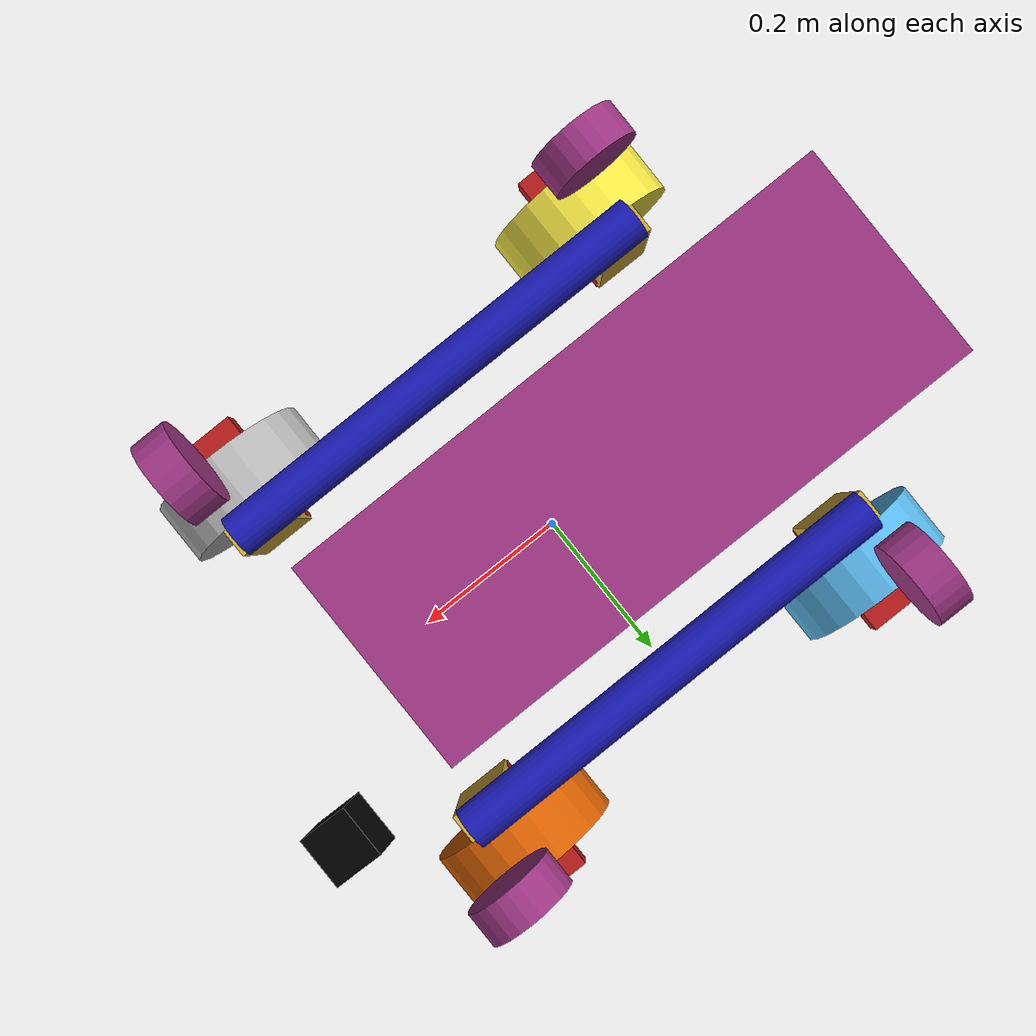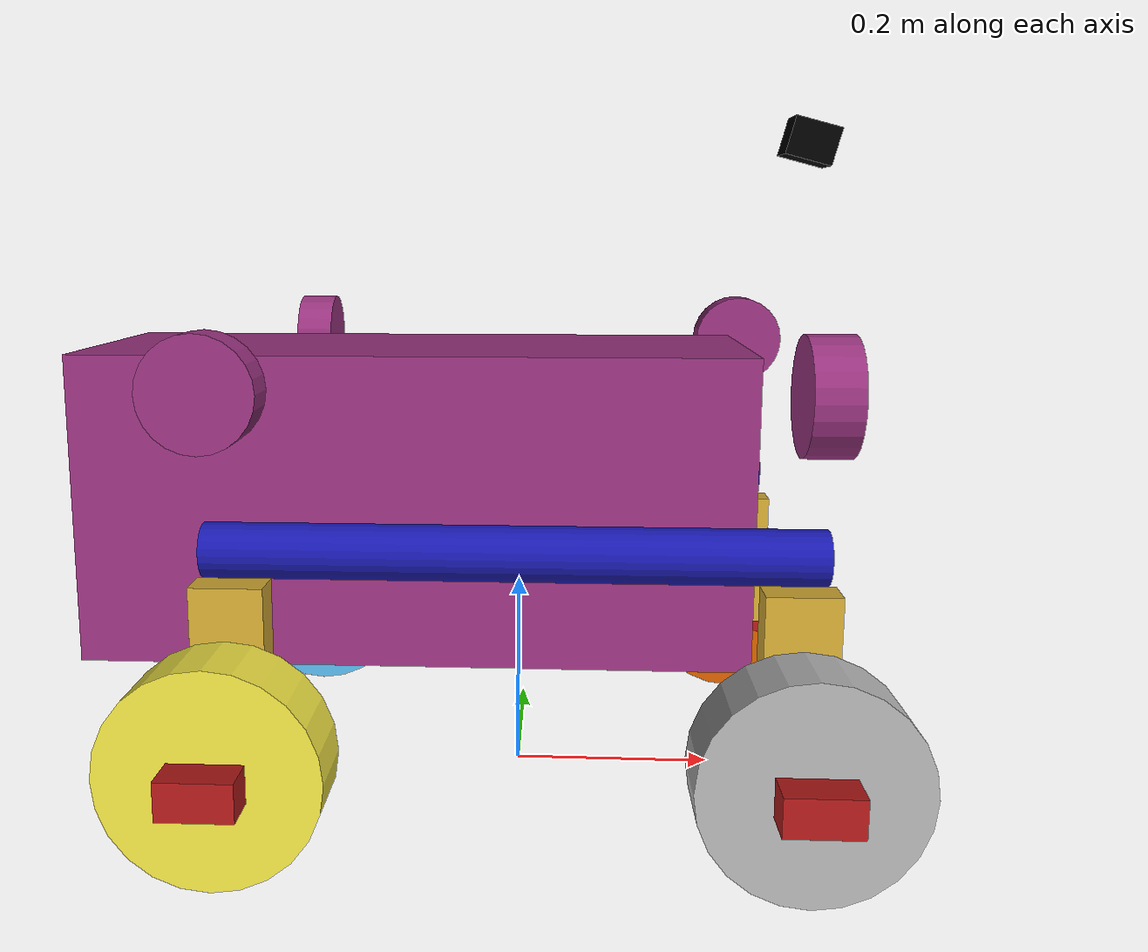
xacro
<?xml version="1.0"?>
<robot xmlns:xacro="http://www.ros.org/wiki/xacro" name="robot">

    <xacro:arg name="use_sim" default="true"/>

    <xacro:include filename="robot_core.xacro" />

    <!-- Select hardware interface based on use_sim arg -->
    <xacro:if value="$(arg use_sim)">
    <xacro:include filename="ros2_control.xacro" />
    </xacro:if>
    <xacro:unless value="$(arg use_sim)">
    <xacro:include filename="ros2_control_hw.xacro" />
    </xacro:unless>

    <xacro:include filename="realsense_d455_macro.xacro" />
    <xacro:realsense_camera parent_link="base_link" />

    <xacro:include filename="camera.xacro" />
    <xacro:camera_module
    cam_name="front_left_camera"
    parent_link="left_rocker"
    xyz="-0.254 0.2 0.139725"
    rpy="-1.570796 -1.570796 0"/>

    <xacro:camera_module
    cam_name="front_right_camera"
    parent_link="right_rocker"
    xyz="0.254 0.2 0.139725"
    rpy="-1.570796 0 0"/>

    <xacro:camera_module
    cam_name="back_left_camera"
    parent_link="left_rocker"
    xyz="0.254 0.2 0.139725"
    rpy="-1.570796 0 0"/>

    <xacro:camera_module
    cam_name="back_right_camera"
    parent_link="right_rocker"
    xyz="-0.254 0.2 0.139725"
    rpy="-1.570796 -1.570796 0"/>

</robot>

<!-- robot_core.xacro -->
<robot name="lunabot" xmlns:xacro="http://www.ros.org/wiki/xacro">

  <xacro:property name="deg180" value="3.14159265"/>
  <xacro:property name="deg90" value="1.5707963"/>

  <!-- BASE ROCKER Transform -->
  <xacro:property name="brx" value="0"/>
  <xacro:property name="bry" value="0.126975"/>
  <xacro:property name="brz" value="0.229093"/>

  <!-- ROCKER KNUCKLE Transform -->
  <xacro:property name="rkx" value="0.254"/>
  <xacro:property name="rky" value="0.019"/>
  <xacro:property name="rkz" value="0.139725"/>

  <!-- KNUCKLE WHEEL Transform -->
  <xacro:property name="kwx" value="0"/>
  <xacro:property name="kwy" value="-0.038135"/>
  <xacro:property name="kwz" value="-0.146383"/>

  <!-- BUCKET Dimensions -->
  <xacro:property name="buck_sx" value="0.65"/>
  <xacro:property name="buck_sy" value="0.25"/>
  <xacro:property name="buck_sz" value="0.30"/>

  <xacro:property name="buck_px" value="-0.1"/>
  <xacro:property name="buck_py" value="0"/>
  <xacro:property name="buck_pz" value="0.295"/>

  <!-- Rocker Dimensions -->
  <xacro:property name="rock_rad" value="0.025"/>
  <xacro:property name="rock_len" value="0.55"/>

  <xacro:property name="rock_px" value="0"/>
  <xacro:property name="rock_py" value="0.05"/>
  <xacro:property name="rock_pz" value="0.075"/>

  <xacro:property name="rock_rx" value="0"/>
  <xacro:property name="rock_ry" value="${deg90}"/>
  <xacro:property name="rock_rz" value="0"/>

  <!-- KNUCKLE Dimensions -->
  <xacro:property name="nuck_sx" value="0.0675"/>
  <xacro:property name="nuck_sy" value="0.035"/>
  <xacro:property name="nuck_sz" value="0.15"/>

  <xacro:property name="nuck_px" value="0"/>
  <xacro:property name="nuck_py" value="-0.065"/>
  <xacro:property name="nuck_pz" value="-0.075"/>

  <!-- WHEEL Dimensions -->
  <xacro:property name="whee_rad" value="0.1"/>
  <xacro:property name="whee_len" value="0.075"/>

  <xacro:property name="whee_px" value="0"/>
  <xacro:property name="whee_py" value="0"/>
  <xacro:property name="whee_pz" value="0.035"/>

  <!-- MATERIALS -->
  <material name="grey">
    <color rgba="0.7 0.7 0.7 1"/>
  </material>

  <material name="green">
    <color rgba="0.6 0.2 0.5 1"/>
  </material>

  <material name="blue">
    <color rgba="0.1 0.1 0.7 1"/>
  </material>

  <material name="red">
    <color rgba="0.7 0.1 0.1 1"/>
  </material>

  <material name="gold">
    <color rgba="0.83 0.67 0.2 1"/>
  </material>

  <!-- BASE LINK -->
  <link name="base_link">
    <inertial>
      <mass value="1.0"/>
      <origin xyz="0 0 0" rpy="0 0 0"/>
      <inertia ixx="0.01" ixy="0" ixz="0" iyy="0.01" iyz="0" izz="0.01"/>
    </inertial>
  </link>

  <!-- BUCKET -->
  <link name="bucket">
    <visual>
      <geometry>
        <box size="${buck_sx} ${buck_sy} ${buck_sz}"/>
      </geometry>
      <origin xyz="${buck_px} ${buck_py} ${buck_pz}" rpy="0 0 0"/>
      <material name="green"/>
    </visual>
    <collision>
      <geometry>
        <box size="${buck_sx} ${buck_sy} ${buck_sz}"/>
      </geometry>
      <origin xyz="${buck_px} ${buck_py} ${buck_pz}" rpy="0 0 0"/>
    </collision>
    <inertial>
      <mass value="15"/>
      <origin xyz="0 0 0" rpy="0 0 0"/>
      <inertia ixx="0.9" ixy="0" ixz="0" iyy="0.4" iyz="0" izz="0.9"/>
    </inertial>
  </link>

  <!-- BUCKET JOINT -->
  <joint name="bucket_joint" type="fixed">
    <parent link="base_link"/>
    <child link="bucket"/>
    <origin xyz="0 0 0" rpy="0 0 0"/>
  </joint>

  <!-- LEFT ROCKER -->
  <link name="left_rocker">
    <visual>
      <geometry>
        <cylinder radius="${rock_rad}" length="${rock_len}"/>
      </geometry>
      <origin xyz="${rock_px} ${rock_py} ${rock_pz}" rpy="${rock_rx} ${rock_ry} ${rock_rz}"/>
      <material name="blue"/>
    </visual>
    <collision>
      <geometry>
        <cylinder radius="${rock_rad}" length="${rock_len}"/>
      </geometry>
      <origin xyz="${rock_px} ${rock_py} ${rock_pz}" rpy="${rock_rx} ${rock_ry} ${rock_rz}"/>
    </collision>
    <inertial>
      <mass value="5"/>
      <origin xyz="${rock_px} ${rock_py} ${rock_pz}" rpy="${rock_rx} ${rock_ry} ${rock_rz}"/>
      <inertia ixx="0.01" ixy="0" ixz="0" iyy="0.01" iyz="0" izz="0.01"/>
    </inertial>
  </link>

  <!-- LEFT ROCKER JOINT -->
  <joint name="left_rocker_joint" type="fixed">
    <parent link="bucket"/>
    <child link="left_rocker"/>
    <origin xyz="${brx} ${bry} ${brz}" rpy="-${deg90} ${deg180} 0"/>
  </joint>

  <!-- RIGHT ROCKER -->
  <link name="right_rocker">
    <visual>
      <geometry>
        <cylinder radius="${rock_rad}" length="${rock_len}"/>
      </geometry>
      <origin xyz="${rock_px} ${rock_py} ${rock_pz}" rpy="${rock_rx} ${rock_ry} ${rock_rz}"/>
      <material name="blue"/>
    </visual>
    <collision>
      <geometry>
        <cylinder radius="${rock_rad}" length="${rock_len}"/>
      </geometry>
      <origin xyz="${rock_px} ${rock_py} ${rock_pz}" rpy="${rock_rx} ${rock_ry} ${rock_rz}"/>
    </collision>
    <inertial>
      <mass value="5"/>
      <origin xyz="${rock_px} ${rock_py} ${rock_pz}" rpy="${rock_rx} ${rock_ry} ${rock_rz}"/>
      <inertia ixx="0.01" ixy="0" ixz="0" iyy="0.01" iyz="0" izz="0.01"/>
    </inertial>
  </link>

  <!-- RIGHT ROCKER JOINT -->
  <joint name="right_rocker_joint" type="fixed">
    <parent link="bucket"/>
    <child link="right_rocker"/>
    <origin xyz="${brx} -${bry} ${brz}" rpy="${deg90} 0 0"/>
  </joint>

  <!-- FRONT LEFT WHEEL POD -->
  <!-- FRONT LEFT KNUCKLE -->
  <link name="front_left_knuckle">
    <visual>
      <geometry>
        <box size="${nuck_sx} ${nuck_sy} ${nuck_sz}"/>
      </geometry>
      <origin xyz="${nuck_px} ${nuck_py} ${nuck_pz}" rpy="0 0 0"/>
      <material name="gold"/>
    </visual>
    <collision>
      <geometry>
        <box size="${nuck_sx} ${nuck_sy} ${nuck_sz}"/>
      </geometry>
      <origin xyz="${nuck_px} ${nuck_py} ${nuck_pz}" rpy="0 0 0"/>
    </collision>
    <inertial>
      <mass value="2.0"/>
      <origin xyz="${nuck_px} ${nuck_py} ${nuck_pz}" rpy="0 0 0"/>
      <inertia ixx="0.01" ixy="0" ixz="0" iyy="0.01" iyz="0" izz="0.01"/>
    </inertial>
  </link>

  <!-- FRONT LEFT STEER JOINT -->
  <joint name="front_left_steer_joint" type="revolute">
    <limit lower="-1.658" upper="1.658" effort="10.0" velocity="2.0"/>
    <parent link="left_rocker"/>
    <child link="front_left_knuckle"/>
    <origin xyz="-${rkx} ${rky} ${rkz}" rpy="-${deg90} ${deg180} 0"/>
    <axis xyz="0 0 1"/>
  </joint>

  <!-- FRONT LEFT WHEEL -->
  <link name="front_left_wheel">
    <visual>
      <geometry>
        <cylinder radius="${whee_rad}" length="${whee_len}"/>
      </geometry>
      <origin xyz="${whee_px} ${whee_py} ${whee_pz}" rpy="0 0 0"/>
    </visual>
    <visual>
      <geometry>
        <box size="${nuck_sx} ${nuck_sy} ${nuck_sz}"/>
      </geometry>
      <origin xyz="${whee_px} ${whee_py} ${whee_pz}" rpy="0 0 0"/>
      <material name="red"/>
    </visual>
    <collision>
      <geometry>
        <cylinder radius="${whee_rad}" length="${whee_len}"/>
      </geometry>
      <origin xyz="${whee_px} ${whee_py} ${whee_pz}" rpy="0 0 0"/>
    </collision>
    <inertial>
      <mass value="2.0"/>
      <origin xyz="${whee_px} ${whee_py} ${whee_pz}" rpy="0 0 0"/>
      <inertia ixx="0.01" ixy="0" ixz="0" iyy="0.01" iyz="0" izz="0.01"/>
    </inertial>
    <gazebo reference="front_left_wheel">
      <mu1>0.9</mu1>
      <mu2>0.9</mu2>
      <kp>100000</kp>
      <kd>1</kd>
      <fdir1>1 0 0</fdir1>
      <rolling_friction>0.02</rolling_friction>
      <spinning_friction>0.02</spinning_friction>
    </gazebo>
  </link>

  <!-- FRONT LEFT DRIVE JOINT -->
  <joint name="front_left_drive_joint" type="continuous">
    <parent link="front_left_knuckle"/>
    <child link="front_left_wheel"/>
    <origin xyz="${kwx} ${kwy} ${kwz}" rpy="${deg90} 0 ${deg180}"/>
    <axis xyz="0 0 1"/>
  </joint>

  <!-- FRONT RIGHT WHEEL POD -->
  <!-- FRONT RIGHT KNUCKLE -->
  <link name="front_right_knuckle">
    <visual>
      <geometry>
        <box size="${nuck_sx} ${nuck_sy} ${nuck_sz}"/>
      </geometry>
      <origin xyz="${nuck_px} ${nuck_py} ${nuck_pz}" rpy="0 0 0"/>
      <material name="gold"/>
    </visual>
    <collision>
      <geometry>
        <box size="${nuck_sx} ${nuck_sy} ${nuck_sz}"/>
      </geometry>
      <origin xyz="${nuck_px} ${nuck_py} ${nuck_pz}" rpy="0 0 0"/>
    </collision>
    <inertial>
      <mass value="2.0"/>
      <origin xyz="${nuck_px} ${nuck_py} ${nuck_pz}" rpy="0 0 0"/>
      <inertia ixx="0.01" ixy="0" ixz="0" iyy="0.01" iyz="0" izz="0.01"/>
    </inertial>
  </link>

  <!-- FRONT RIGHT STEER JOINT -->
  <joint name="front_right_steer_joint" type="revolute">
    <limit lower="-1.658" upper="1.658" effort="10.0" velocity="2.0"/>
    <parent link="right_rocker"/>
    <child link="front_right_knuckle"/>
    <origin xyz="${rkx} ${rky} ${rkz}" rpy="${deg90} 0 ${deg180}"/>
    <axis xyz="0 0 1"/>
  </joint>

  <!-- FRONT RIGHT WHEEL -->
  <link name="front_right_wheel">
    <visual>
      <geometry>
        <cylinder radius="${whee_rad}" length="${whee_len}"/>
      </geometry>
      <origin xyz="${whee_px} ${whee_py} ${whee_pz}" rpy="0 0 0"/>
    </visual>
    <visual>
      <geometry>
        <box size="${nuck_sx} ${nuck_sy} ${nuck_sz}"/>
      </geometry>
      <origin xyz="${whee_px} ${whee_py} ${whee_pz}" rpy="0 0 0"/>
      <material name="red"/>
    </visual>
    <collision>
      <geometry>
        <cylinder radius="${whee_rad}" length="${whee_len}"/>
      </geometry>
      <origin xyz="${whee_px} ${whee_py} ${whee_pz}" rpy="0 0 0"/>
    </collision>
    <inertial>
      <mass value="2.0"/>
      <origin xyz="${whee_px} ${whee_py} ${whee_pz}" rpy="0 0 0"/>
      <inertia ixx="0.01" ixy="0" ixz="0" iyy="0.01" iyz="0" izz="0.01"/>
    </inertial>
    <gazebo reference="front_right_wheel">
      <mu1>0.9</mu1>
      <mu2>0.9</mu2>
      <kp>100000</kp>
      <kd>1</kd>
      <fdir1>1 0 0</fdir1>
      <rolling_friction>0.02</rolling_friction>
      <spinning_friction>0.02</spinning_friction>
    </gazebo>
  </link>

  <!-- FRONT RIGHT DRIVE JOINT -->
  <joint name="front_right_drive_joint" type="continuous">
    <parent link="front_right_knuckle"/>
    <child link="front_right_wheel"/>
    <origin xyz="${kwx} ${kwy} ${kwz}" rpy="${deg90} 0 ${deg180}"/>
    <axis xyz="0 0 -1"/>
  </joint>

  <!-- BACK LEFT WHEEL POD -->
  <!-- BACK LEFT KNUCKLE -->
  <link name="back_left_knuckle">
    <visual>
      <geometry>
        <box size="${nuck_sx} ${nuck_sy} ${nuck_sz}"/>
      </geometry>
      <origin xyz="${nuck_px} ${nuck_py} ${nuck_pz}" rpy="0 0 0"/>
      <material name="gold"/>
    </visual>
    <collision>
      <geometry>
        <box size="${nuck_sx} ${nuck_sy} ${nuck_sz}"/>
      </geometry>
      <origin xyz="${nuck_px} ${nuck_py} ${nuck_pz}" rpy="0 0 0"/>
    </collision>
    <inertial>
      <mass value="2.0"/>
      <origin xyz="${nuck_px} ${nuck_py} ${nuck_pz}" rpy="0 0 0"/>
      <inertia ixx="0.01" ixy="0" ixz="0" iyy="0.01" iyz="0" izz="0.01"/>
    </inertial>
  </link>

  <!-- BACK LEFT STEER JOINT -->
  <joint name="back_left_steer_joint" type="revolute">
    <limit lower="-1.658" upper="1.658" effort="10.0" velocity="2.0"/>
    <parent link="left_rocker"/>
    <child link="back_left_knuckle"/>
    <origin xyz="${rkx} ${rky} ${rkz}" rpy="${deg90} 0 ${deg180}"/>
    <axis xyz="0 0 1"/>
  </joint>

    <!-- BACK LEFT WHEEL -->
  <link name="back_left_wheel">
    <visual>
      <geometry>
        <cylinder radius="${whee_rad}" length="${whee_len}"/>
      </geometry>
      <origin xyz="${whee_px} ${whee_py} ${whee_pz}" rpy="0 0 0"/>
    </visual>
    <visual>
      <geometry>
        <box size="${nuck_sx} ${nuck_sy} ${nuck_sz}"/>
      </geometry>
      <origin xyz="${whee_px} ${whee_py} ${whee_pz}" rpy="0 0 0"/>
      <material name="red"/>
    </visual>
    <collision>
      <geometry>
        <cylinder radius="${whee_rad}" length="${whee_len}"/>
      </geometry>
      <origin xyz="${whee_px} ${whee_py} ${whee_pz}" rpy="0 0 0"/>
    </collision>
    <inertial>
      <mass value="2.0"/>
      <origin xyz="${whee_px} ${whee_py} ${whee_pz}" rpy="0 0 0"/>
      <inertia ixx="0.01" ixy="0" ixz="0" iyy="0.01" iyz="0" izz="0.01"/>
    </inertial>
    <gazebo reference="back_left_wheel">
      <mu1>0.9</mu1>
      <mu2>0.9</mu2>
      <kp>100000</kp>
      <kd>1</kd>
      <fdir1>1 0 0</fdir1>
      <rolling_friction>0.02</rolling_friction>
      <spinning_friction>0.02</spinning_friction>
    </gazebo>
  </link>

  <!-- BACK LEFT DRIVE JOINT -->
  <joint name="back_left_drive_joint" type="continuous">
    <parent link="back_left_knuckle"/>
    <child link="back_left_wheel"/>
    <origin xyz="${kwx} ${kwy} ${kwz}" rpy="${deg90} 0 ${deg180}"/>
    <axis xyz="0 0 1"/>
  </joint>

  <!-- BACK RIGHT WHEEL POD -->
  <!-- BACK RIGHT KNUCKLE -->
  <link name="back_right_knuckle">
    <visual>
      <geometry>
        <box size="${nuck_sx} ${nuck_sy} ${nuck_sz}"/>
      </geometry>
      <origin xyz="${nuck_px} ${nuck_py} ${nuck_pz}" rpy="0 0 0"/>
      <material name="gold"/>
    </visual>
    <collision>
      <geometry>
        <box size="${nuck_sx} ${nuck_sy} ${nuck_sz}"/>
      </geometry>
      <origin xyz="${nuck_px} ${nuck_py} ${nuck_pz}" rpy="0 0 0"/>
    </collision>
    <inertial>
      <mass value="2.0"/>
      <origin xyz="${nuck_px} ${nuck_py} ${nuck_pz}" rpy="0 0 0"/>
      <inertia ixx="0.01" ixy="0" ixz="0" iyy="0.01" iyz="0" izz="0.01"/>
    </inertial>
  </link>

  <!-- BACK RIGHT STEER JOINT -->
  <joint name="back_right_steer_joint" type="revolute">
    <limit lower="-1.658" upper="1.658" effort="10.0" velocity="2.0"/>
    <parent link="right_rocker"/>
    <child link="back_right_knuckle"/>
    <origin xyz="-${rkx} ${rky} ${rkz}" rpy="${deg90} 0 ${deg180}"/>
    <axis xyz="0 0 1"/>
  </joint>

  <!-- BACK RIGHT WHEEL -->
  <link name="back_right_wheel">
    <visual>
      <geometry>
        <cylinder radius="${whee_rad}" length="${whee_len}"/>
      </geometry>
      <origin xyz="${whee_px} ${whee_py} ${whee_pz}" rpy="0 0 0"/>
    </visual>
    <visual>
      <geometry>
        <box size="${nuck_sx} ${nuck_sy} ${nuck_sz}"/>
      </geometry>
      <origin xyz="${whee_px} ${whee_py} ${whee_pz}" rpy="0 0 0"/>
      <material name="red"/>
    </visual>
    <collision>
      <geometry>
        <cylinder radius="${whee_rad}" length="${whee_len}"/>
      </geometry>
      <origin xyz="${whee_px} ${whee_py} ${whee_pz}" rpy="0 0 0"/>
    </collision>
    <inertial>
      <mass value="2.0"/>
      <origin xyz="${whee_px} ${whee_py} ${whee_pz}" rpy="0 0 0"/>
      <inertia ixx="0.01" ixy="0" ixz="0" iyy="0.01" iyz="0" izz="0.01"/>
    </inertial>
    <gazebo reference="back_right_wheel">
      <mu1>0.9</mu1>
      <mu2>0.9</mu2>
      <kp>100000</kp>
      <kd>1</kd>
      <fdir1>1 0 0</fdir1>
      <rolling_friction>0.02</rolling_friction>
      <spinning_friction>0.02</spinning_friction>
    </gazebo>
  </link>

  <!-- BACK RIGHT DRIVE JOINT -->
  <joint name="back_right_drive_joint" type="continuous">
    <parent link="back_right_knuckle"/>
    <child link="back_right_wheel"/>
    <origin xyz="${kwx} ${kwy} ${kwz}" rpy="${deg90} 0 ${deg180}"/>
    <axis xyz="0 0 -1"/>
  </joint>
</robot>

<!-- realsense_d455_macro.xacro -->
<robot xmlns:xacro="http://www.ros.org/wiki/xacro">

  <xacro:macro name="realsense_camera" params="parent_link">

    <link name="depth_camera_link">
      <visual>
        <geometry>
          <box size="0.05 0.05 0.04"/>
        </geometry>
        <material name="black">
          <color rgba="0 0 0 1"/>
        </material>
      </visual>
      <collision>
        <geometry>
          <box size="0.05 0.05 0.04"/>
        </geometry>
      </collision>
      <inertial>
        <mass value="0.2"/>
        <inertia ixx="0.0001" ixy="0" ixz="0"
                iyy="0.0001" iyz="0" izz="0.0001"/>
      </inertial>
    </link>

    <!-- Fixed joint connecting camera to robot -->
    <joint name="depth_camera_joint" type="fixed">
      <parent link="${parent_link}"/>
      <child link="depth_camera_link"/>
      <origin xyz="0.3 0.1 0.65" rpy="0 0.262 0"/>
    </joint>

    <!-- ===== Optical frames for ROS conventions ===== -->
    <!-- Color optical frame (rotated for camera coordinate system Z forward, X right, Y down) -->
    <link name="camera_color_optical_frame"/>
    <joint name="camera_color_optical_joint" type="fixed">
      <parent link="depth_camera_link"/>
      <child link="camera_color_optical_frame"/>
      <!-- Rotation -90 deg roll, 0 pitch, -90 deg yaw transforms robot frame to optical frame -->
      <origin xyz="0 0 0" rpy="-1.5708 0 -1.5708"/>
    </joint>

    <!-- Depth optical frame (same orientation as color for aligned depth) -->
    <link name="camera_depth_optical_frame"/>
    <joint name="camera_depth_optical_joint" type="fixed">
      <parent link="depth_camera_link"/>
      <child link="camera_depth_optical_frame"/>
      <origin xyz="0 0 0" rpy="-1.5708 0 -1.5708"/>
    </joint>

    <!-- Camera link (standard ROS naming convention) -->
    <link name="camera_link"/>
    <joint name="camera_link_joint" type="fixed">
      <parent link="depth_camera_link"/>
      <child link="camera_link"/>
      <origin xyz="0 0 0" rpy="0 0 0"/>
    </joint>

    <!-- ================= GAZEBO HARMONIC SENSORS ============= -->
    <gazebo reference="depth_camera_link">

      <!-- ================= RGB CAMERA ================= -->
      <sensor name="d455_rgb_camera" type="camera">
        <topic>/sim/camera/rgb/image</topic>

        <always_on>true</always_on>
        <update_rate>30</update_rate>
        <pose>0 0 0 0 0 0</pose>

        <camera>
          <!-- D455 RGB  86deg H-FOV = 1.5009 rad -->
          <horizontal_fov>1.5009</horizontal_fov>
          <image>
            <width>1280</width>
            <height>720</height>
            <format>R8G8B8</format>
          </image>
          <clip><near>0.1</near><far>10.0</far></clip>
          <render_engine>ogre</render_engine>
        </camera>

        <frame>camera_color_optical_frame</frame>
      </sensor>

      <!-- ================= DEPTH CAMERA ================= -->
      <sensor name="d455_depth_camera" type="depth">
        <topic>/sim/camera/depth/image</topic>
        <always_on>true</always_on>
        <update_rate>30</update_rate>
        <pose>0 0 0 0 0 0</pose>
        <camera>
          <!-- D455 Depth 86deg H-FOV = 1.5009 rad -->
          <horizontal_fov>1.5009</horizontal_fov>
          <image>
            <width>1280</width>
            <height>720</height>
            <format>R8G8B8</format>
          </image>
          <clip><near>0.2</near><far>10.0</far></clip>
          <render_engine>ogre</render_engine>
        </camera>

        <!-- Optional packed depth for pointcloud conversion -->
        <publisher>
          <topic>/sim/camera/depth/image_packed</topic>
          <type>pointcloud_packed</type>
        </publisher>

        <frame>camera_depth_optical_frame</frame>
      </sensor>

    </gazebo>

  </xacro:macro>

</robot>

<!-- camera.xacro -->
<robot xmlns:xacro="http://www.ros.org/wiki/xacro">

  <!-- Macro: generic camera with parametric pose and naming -->
  <xacro:macro name="camera_module" params="
      parent_link
      cam_name:=camera
      xyz:='0 0 0'
      rpy:='0 0 0'
      radius:=0.05
      length:=0.04
      fov:=2.094
      width:=1280
      height:=720
      clip_near:=0.3
      clip_far:=8.0
      update_rate:=15
  ">

    <!-- BASE JOINT -->
    <joint name="${cam_name}_joint" type="fixed">
      <parent link="${parent_link}"/>
      <child link="${cam_name}_link"/>
      <origin xyz="${xyz}" rpy="${rpy}"/>
    </joint>

    <!-- CAMERA BODY LINK -->
    <link name="${cam_name}_link">
      <visual>
        <geometry>
          <cylinder radius="${radius}" length="${length}"/>
        </geometry>
        <origin xyz="0 0 0" rpy="0 -1.57079632679 0"/>
        <material name="green"/>
      </visual>
    </link>

    <!-- OPTICAL FRAME -->
    <joint name="${cam_name}_optical_joint" type="fixed">
      <parent link="${cam_name}_link"/>
      <child link="${cam_name}_link_optical"/>
      <origin xyz="0 0 0" rpy="-1.57079632679 0 -1.57079632679"/>
    </joint>

    <link name="${cam_name}_link_optical"/>

    <!-- GAZEBO SENSOR -->
    <gazebo reference="${cam_name}_link">
      <sensor name="${cam_name}" type="camera">
        <camera>
          <camera_info_topic>${cam_name}/camera_info</camera_info_topic>
          <horizontal_fov>${fov}</horizontal_fov>
          <image>
            <format>R8G8B8</format>
            <width>${width}</width>
            <height>${height}</height>
          </image>
          <clip>
            <near>${clip_near}</near>
            <far>${clip_far}</far>
          </clip>
        </camera>
        <visualize>true</visualize>
        <update_rate>${update_rate}</update_rate>
        <topic>${cam_name}/image_raw</topic>
        <gz_frame_id>${cam_name}_link_optical</gz_frame_id>
      </sensor>
    </gazebo>

  </xacro:macro>

</robot>
